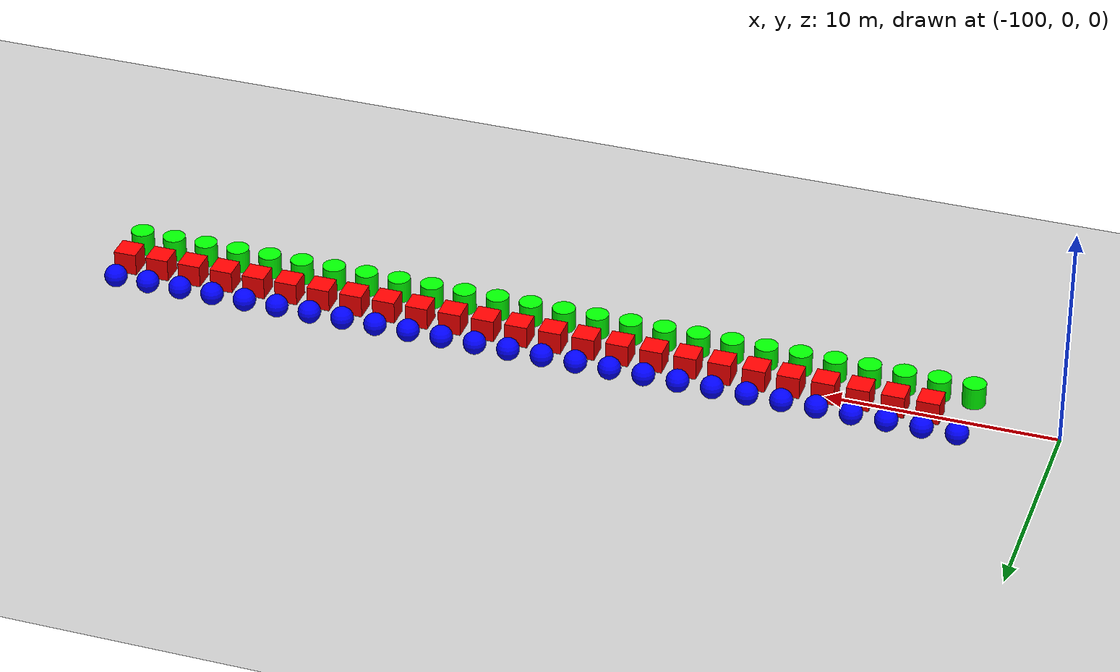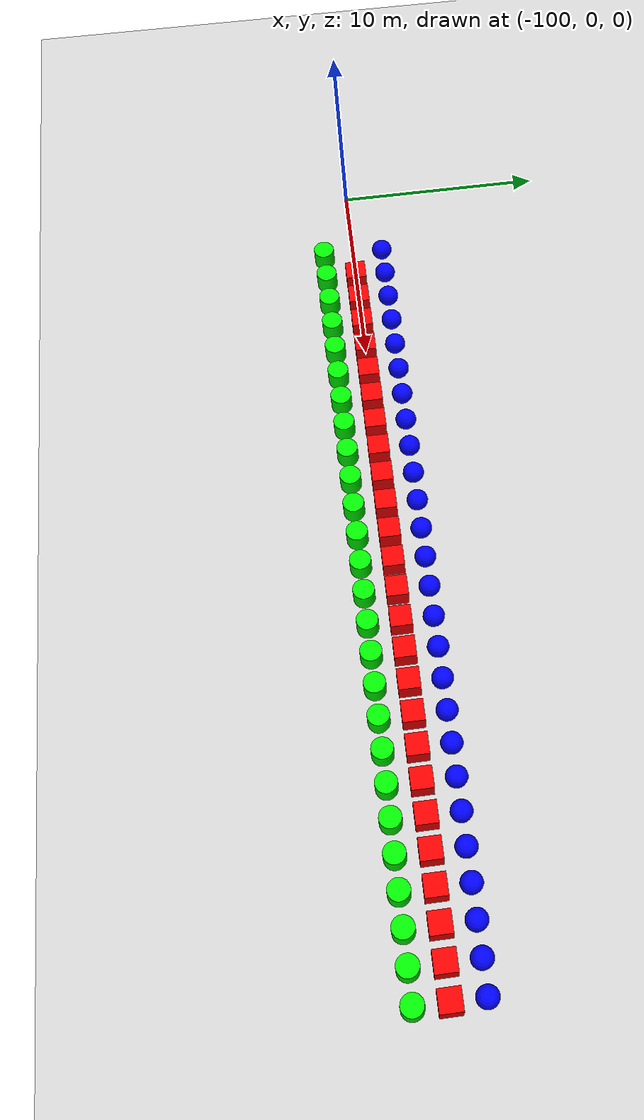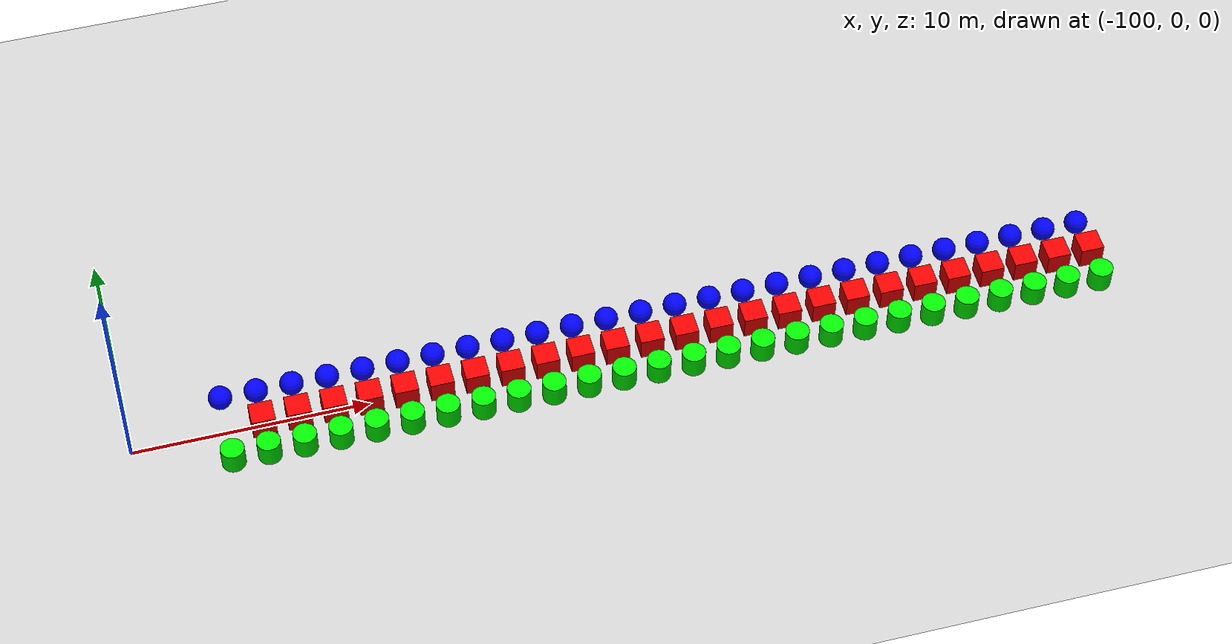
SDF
<sdf version="1.6">
 <world name="shapes">
  <model name="ground_plane">
   <static>true</static>
   <link name="link">
    <collision name="collision">
     <geometry><plane><normal>0 0 1</normal><size>100 100</size></plane></geometry>
    </collision>
    <visual name="visual">
     <geometry><plane><normal>0 0 1</normal><size>100 100</size></plane></geometry>
     <material>
      <ambient>0.8 0.8 0.8 1</ambient>
      <diffuse>0.8 0.8 0.8 1</diffuse>
      <specular>0.8 0.8 0.8 1</specular>
     </material>
    </visual>
   </link>
  </model>
  <model name="cylinder_436">
   <static>false</static>
   <pose>-96.0 -1.5 0.5 0 0 0</pose>
   <link name="cylinder_link">
    <inertial>
     <inertia><ixx>2</ixx><ixy>0</ixy><ixz>0</ixz><iyy>2</iyy><iyz>0</iyz><izz>2</izz></inertia>
     <mass>2.0</mass>
    </inertial>
    <collision name="cylinder_collision">
     <geometry><cylinder><radius>0.5</radius><length>1.0</length></cylinder></geometry>
    </collision>
    <visual name="cylinder_visual">
     <geometry><cylinder><radius>0.5</radius><length>1.0</length></cylinder></geometry>
     <material><ambient>0 1 0 1</ambient><diffuse>0 1 0 1</diffuse><specular>0 1 0 1</specular></material>
    </visual>
   </link>
  </model>
  <model name="sphere_436">
   <static>false</static>
   <pose>-96.0 1.5 0.5 0 0 0</pose>
   <link name="sphere_link">
    <inertial>
     <inertia><ixx>3</ixx><ixy>0</ixy><ixz>0</ixz><iyy>3</iyy><iyz>0</iyz><izz>3</izz></inertia>
     <mass>3.0</mass>
    </inertial>
    <collision name="sphere_collision"><geometry><sphere><radius>0.5</radius></sphere></geometry></collision>
    <visual name="sphere_visual">
     <geometry><sphere><radius>0.5</radius></sphere></geometry>
     <material><ambient>0 0 1 1</ambient><diffuse>0 0 1 1</diffuse><specular>0 0 1 1</specular></material>
    </visual>
   </link>
  </model>
  <model name="box_437">
   <static>false</static>
   <pose>-94.5 0 0.5 0 0 0</pose>
   <link name="box_link">
    <inertial>
     <inertia><ixx>1</ixx><ixy>0</ixy><ixz>0</ixz><iyy>1</iyy><iyz>0</iyz><izz>1</izz></inertia>
     <mass>1.0</mass>
    </inertial>
    <collision name="box_collision"><geometry><box><size>1 1 1</size></box></geometry></collision>
    <visual name="box_visual">
     <geometry><box><size>1 1 1</size></box></geometry>
     <material><ambient>1 0 0 1</ambient><diffuse>1 0 0 1</diffuse><specular>1 0 0 1</specular></material>
    </visual>
   </link>
  </model>
  <model name="cylinder_437">
   <static>false</static>
   <pose>-94.5 -1.5 0.5 0 0 0</pose>
   <link name="cylinder_link">
    <inertial>
     <inertia><ixx>2</ixx><ixy>0</ixy><ixz>0</ixz><iyy>2</iyy><iyz>0</iyz><izz>2</izz></inertia>
     <mass>2.0</mass>
    </inertial>
    <collision name="cylinder_collision">
     <geometry><cylinder><radius>0.5</radius><length>1.0</length></cylinder></geometry>
    </collision>
    <visual name="cylinder_visual">
     <geometry><cylinder><radius>0.5</radius><length>1.0</length></cylinder></geometry>
     <material><ambient>0 1 0 1</ambient><diffuse>0 1 0 1</diffuse><specular>0 1 0 1</specular></material>
    </visual>
   </link>
  </model>
  <model name="sphere_437">
   <static>false</static>
   <pose>-94.5 1.5 0.5 0 0 0</pose>
   <link name="sphere_link">
    <inertial>
     <inertia><ixx>3</ixx><ixy>0</ixy><ixz>0</ixz><iyy>3</iyy><iyz>0</iyz><izz>3</izz></inertia>
     <mass>3.0</mass>
    </inertial>
    <collision name="sphere_collision"><geometry><sphere><radius>0.5</radius></sphere></geometry></collision>
    <visual name="sphere_visual">
     <geometry><sphere><radius>0.5</radius></sphere></geometry>
     <material><ambient>0 0 1 1</ambient><diffuse>0 0 1 1</diffuse><specular>0 0 1 1</specular></material>
    </visual>
   </link>
  </model>
  <model name="box_438">
   <static>false</static>
   <pose>-93.0 0 0.5 0 0 0</pose>
   <link name="box_link">
    <inertial>
     <inertia><ixx>1</ixx><ixy>0</ixy><ixz>0</ixz><iyy>1</iyy><iyz>0</iyz><izz>1</izz></inertia>
     <mass>1.0</mass>
    </inertial>
    <collision name="box_collision"><geometry><box><size>1 1 1</size></box></geometry></collision>
    <visual name="box_visual">
     <geometry><box><size>1 1 1</size></box></geometry>
     <material><ambient>1 0 0 1</ambient><diffuse>1 0 0 1</diffuse><specular>1 0 0 1</specular></material>
    </visual>
   </link>
  </model>
  <model name="cylinder_438">
   <static>false</static>
   <pose>-93.0 -1.5 0.5 0 0 0</pose>
   <link name="cylinder_link">
    <inertial>
     <inertia><ixx>2</ixx><ixy>0</ixy><ixz>0</ixz><iyy>2</iyy><iyz>0</iyz><izz>2</izz></inertia>
     <mass>2.0</mass>
    </inertial>
    <collision name="cylinder_collision">
     <geometry><cylinder><radius>0.5</radius><length>1.0</length></cylinder></geometry>
    </collision>
    <visual name="cylinder_visual">
     <geometry><cylinder><radius>0.5</radius><length>1.0</length></cylinder></geometry>
     <material><ambient>0 1 0 1</ambient><diffuse>0 1 0 1</diffuse><specular>0 1 0 1</specular></material>
    </visual>
   </link>
  </model>
  <model name="sphere_438">
   <static>false</static>
   <pose>-93.0 1.5 0.5 0 0 0</pose>
   <link name="sphere_link">
    <inertial>
     <inertia><ixx>3</ixx><ixy>0</ixy><ixz>0</ixz><iyy>3</iyy><iyz>0</iyz><izz>3</izz></inertia>
     <mass>3.0</mass>
    </inertial>
    <collision name="sphere_collision"><geometry><sphere><radius>0.5</radius></sphere></geometry></collision>
    <visual name="sphere_visual">
     <geometry><sphere><radius>0.5</radius></sphere></geometry>
     <material><ambient>0 0 1 1</ambient><diffuse>0 0 1 1</diffuse><specular>0 0 1 1</specular></material>
    </visual>
   </link>
  </model>
  <model name="box_439">
   <static>false</static>
   <pose>-91.5 0 0.5 0 0 0</pose>
   <link name="box_link">
    <inertial>
     <inertia><ixx>1</ixx><ixy>0</ixy><ixz>0</ixz><iyy>1</iyy><iyz>0</iyz><izz>1</izz></inertia>
     <mass>1.0</mass>
    </inertial>
    <collision name="box_collision"><geometry><box><size>1 1 1</size></box></geometry></collision>
    <visual name="box_visual">
     <geometry><box><size>1 1 1</size></box></geometry>
     <material><ambient>1 0 0 1</ambient><diffuse>1 0 0 1</diffuse><specular>1 0 0 1</specular></material>
    </visual>
   </link>
  </model>
  <model name="cylinder_439">
   <static>false</static>
   <pose>-91.5 -1.5 0.5 0 0 0</pose>
   <link name="cylinder_link">
    <inertial>
     <inertia><ixx>2</ixx><ixy>0</ixy><ixz>0</ixz><iyy>2</iyy><iyz>0</iyz><izz>2</izz></inertia>
     <mass>2.0</mass>
    </inertial>
    <collision name="cylinder_collision">
     <geometry><cylinder><radius>0.5</radius><length>1.0</length></cylinder></geometry>
    </collision>
    <visual name="cylinder_visual">
     <geometry><cylinder><radius>0.5</radius><length>1.0</length></cylinder></geometry>
     <material><ambient>0 1 0 1</ambient><diffuse>0 1 0 1</diffuse><specular>0 1 0 1</specular></material>
    </visual>
   </link>
  </model>
  <model name="sphere_439">
   <static>false</static>
   <pose>-91.5 1.5 0.5 0 0 0</pose>
   <link name="sphere_link">
    <inertial>
     <inertia><ixx>3</ixx><ixy>0</ixy><ixz>0</ixz><iyy>3</iyy><iyz>0</iyz><izz>3</izz></inertia>
     <mass>3.0</mass>
    </inertial>
    <collision name="sphere_collision"><geometry><sphere><radius>0.5</radius></sphere></geometry></collision>
    <visual name="sphere_visual">
     <geometry><sphere><radius>0.5</radius></sphere></geometry>
     <material><ambient>0 0 1 1</ambient><diffuse>0 0 1 1</diffuse><specular>0 0 1 1</specular></material>
    </visual>
   </link>
  </model>
  <model name="box_440">
   <static>false</static>
   <pose>-90.0 0 0.5 0 0 0</pose>
   <link name="box_link">
    <inertial>
     <inertia><ixx>1</ixx><ixy>0</ixy><ixz>0</ixz><iyy>1</iyy><iyz>0</iyz><izz>1</izz></inertia>
     <mass>1.0</mass>
    </inertial>
    <collision name="box_collision"><geometry><box><size>1 1 1</size></box></geometry></collision>
    <visual name="box_visual">
     <geometry><box><size>1 1 1</size></box></geometry>
     <material><ambient>1 0 0 1</ambient><diffuse>1 0 0 1</diffuse><specular>1 0 0 1</specular></material>
    </visual>
   </link>
  </model>
  <model name="cylinder_440">
   <static>false</static>
   <pose>-90.0 -1.5 0.5 0 0 0</pose>
   <link name="cylinder_link">
    <inertial>
     <inertia><ixx>2</ixx><ixy>0</ixy><ixz>0</ixz><iyy>2</iyy><iyz>0</iyz><izz>2</izz></inertia>
     <mass>2.0</mass>
    </inertial>
    <collision name="cylinder_collision">
     <geometry><cylinder><radius>0.5</radius><length>1.0</length></cylinder></geometry>
    </collision>
    <visual name="cylinder_visual">
     <geometry><cylinder><radius>0.5</radius><length>1.0</length></cylinder></geometry>
     <material><ambient>0 1 0 1</ambient><diffuse>0 1 0 1</diffuse><specular>0 1 0 1</specular></material>
    </visual>
   </link>
  </model>
  <model name="sphere_440">
   <static>false</static>
   <pose>-90.0 1.5 0.5 0 0 0</pose>
   <link name="sphere_link">
    <inertial>
     <inertia><ixx>3</ixx><ixy>0</ixy><ixz>0</ixz><iyy>3</iyy><iyz>0</iyz><izz>3</izz></inertia>
     <mass>3.0</mass>
    </inertial>
    <collision name="sphere_collision"><geometry><sphere><radius>0.5</radius></sphere></geometry></collision>
    <visual name="sphere_visual">
     <geometry><sphere><radius>0.5</radius></sphere></geometry>
     <material><ambient>0 0 1 1</ambient><diffuse>0 0 1 1</diffuse><specular>0 0 1 1</specular></material>
    </visual>
   </link>
  </model>
  <model name="box_441">
   <static>false</static>
   <pose>-88.5 0 0.5 0 0 0</pose>
   <link name="box_link">
    <inertial>
     <inertia><ixx>1</ixx><ixy>0</ixy><ixz>0</ixz><iyy>1</iyy><iyz>0</iyz><izz>1</izz></inertia>
     <mass>1.0</mass>
    </inertial>
    <collision name="box_collision"><geometry><box><size>1 1 1</size></box></geometry></collision>
    <visual name="box_visual">
     <geometry><box><size>1 1 1</size></box></geometry>
     <material><ambient>1 0 0 1</ambient><diffuse>1 0 0 1</diffuse><specular>1 0 0 1</specular></material>
    </visual>
   </link>
  </model>
  <model name="cylinder_441">
   <static>false</static>
   <pose>-88.5 -1.5 0.5 0 0 0</pose>
   <link name="cylinder_link">
    <inertial>
     <inertia><ixx>2</ixx><ixy>0</ixy><ixz>0</ixz><iyy>2</iyy><iyz>0</iyz><izz>2</izz></inertia>
     <mass>2.0</mass>
    </inertial>
    <collision name="cylinder_collision">
     <geometry><cylinder><radius>0.5</radius><length>1.0</length></cylinder></geometry>
    </collision>
    <visual name="cylinder_visual">
     <geometry><cylinder><radius>0.5</radius><length>1.0</length></cylinder></geometry>
     <material><ambient>0 1 0 1</ambient><diffuse>0 1 0 1</diffuse><specular>0 1 0 1</specular></material>
    </visual>
   </link>
  </model>
  <model name="sphere_441">
   <static>false</static>
   <pose>-88.5 1.5 0.5 0 0 0</pose>
   <link name="sphere_link">
    <inertial>
     <inertia><ixx>3</ixx><ixy>0</ixy><ixz>0</ixz><iyy>3</iyy><iyz>0</iyz><izz>3</izz></inertia>
     <mass>3.0</mass>
    </inertial>
    <collision name="sphere_collision"><geometry><sphere><radius>0.5</radius></sphere></geometry></collision>
    <visual name="sphere_visual">
     <geometry><sphere><radius>0.5</radius></sphere></geometry>
     <material><ambient>0 0 1 1</ambient><diffuse>0 0 1 1</diffuse><specular>0 0 1 1</specular></material>
    </visual>
   </link>
  </model>
  <model name="box_442">
   <static>false</static>
   <pose>-87.0 0 0.5 0 0 0</pose>
   <link name="box_link">
    <inertial>
     <inertia><ixx>1</ixx><ixy>0</ixy><ixz>0</ixz><iyy>1</iyy><iyz>0</iyz><izz>1</izz></inertia>
     <mass>1.0</mass>
    </inertial>
    <collision name="box_collision"><geometry><box><size>1 1 1</size></box></geometry></collision>
    <visual name="box_visual">
     <geometry><box><size>1 1 1</size></box></geometry>
     <material><ambient>1 0 0 1</ambient><diffuse>1 0 0 1</diffuse><specular>1 0 0 1</specular></material>
    </visual>
   </link>
  </model>
  <model name="cylinder_442">
   <static>false</static>
   <pose>-87.0 -1.5 0.5 0 0 0</pose>
   <link name="cylinder_link">
    <inertial>
     <inertia><ixx>2</ixx><ixy>0</ixy><ixz>0</ixz><iyy>2</iyy><iyz>0</iyz><izz>2</izz></inertia>
     <mass>2.0</mass>
    </inertial>
    <collision name="cylinder_collision">
     <geometry><cylinder><radius>0.5</radius><length>1.0</length></cylinder></geometry>
    </collision>
    <visual name="cylinder_visual">
     <geometry><cylinder><radius>0.5</radius><length>1.0</length></cylinder></geometry>
     <material><ambient>0 1 0 1</ambient><diffuse>0 1 0 1</diffuse><specular>0 1 0 1</specular></material>
    </visual>
   </link>
  </model>
  <model name="sphere_442">
   <static>false</static>
   <pose>-87.0 1.5 0.5 0 0 0</pose>
   <link name="sphere_link">
    <inertial>
     <inertia><ixx>3</ixx><ixy>0</ixy><ixz>0</ixz><iyy>3</iyy><iyz>0</iyz><izz>3</izz></inertia>
     <mass>3.0</mass>
    </inertial>
    <collision name="sphere_collision"><geometry><sphere><radius>0.5</radius></sphere></geometry></collision>
    <visual name="sphere_visual">
     <geometry><sphere><radius>0.5</radius></sphere></geometry>
     <material><ambient>0 0 1 1</ambient><diffuse>0 0 1 1</diffuse><specular>0 0 1 1</specular></material>
    </visual>
   </link>
  </model>
  <model name="box_443">
   <static>false</static>
   <pose>-85.5 0 0.5 0 0 0</pose>
   <link name="box_link">
    <inertial>
     <inertia><ixx>1</ixx><ixy>0</ixy><ixz>0</ixz><iyy>1</iyy><iyz>0</iyz><izz>1</izz></inertia>
     <mass>1.0</mass>
    </inertial>
    <collision name="box_collision"><geometry><box><size>1 1 1</size></box></geometry></collision>
    <visual name="box_visual">
     <geometry><box><size>1 1 1</size></box></geometry>
     <material><ambient>1 0 0 1</ambient><diffuse>1 0 0 1</diffuse><specular>1 0 0 1</specular></material>
    </visual>
   </link>
  </model>
  <model name="cylinder_443">
   <static>false</static>
   <pose>-85.5 -1.5 0.5 0 0 0</pose>
   <link name="cylinder_link">
    <inertial>
     <inertia><ixx>2</ixx><ixy>0</ixy><ixz>0</ixz><iyy>2</iyy><iyz>0</iyz><izz>2</izz></inertia>
     <mass>2.0</mass>
    </inertial>
    <collision name="cylinder_collision">
     <geometry><cylinder><radius>0.5</radius><length>1.0</length></cylinder></geometry>
    </collision>
    <visual name="cylinder_visual">
     <geometry><cylinder><radius>0.5</radius><length>1.0</length></cylinder></geometry>
     <material><ambient>0 1 0 1</ambient><diffuse>0 1 0 1</diffuse><specular>0 1 0 1</specular></material>
    </visual>
   </link>
  </model>
  <model name="sphere_443">
   <static>false</static>
   <pose>-85.5 1.5 0.5 0 0 0</pose>
   <link name="sphere_link">
    <inertial>
     <inertia><ixx>3</ixx><ixy>0</ixy><ixz>0</ixz><iyy>3</iyy><iyz>0</iyz><izz>3</izz></inertia>
     <mass>3.0</mass>
    </inertial>
    <collision name="sphere_collision"><geometry><sphere><radius>0.5</radius></sphere></geometry></collision>
    <visual name="sphere_visual">
     <geometry><sphere><radius>0.5</radius></sphere></geometry>
     <material><ambient>0 0 1 1</ambient><diffuse>0 0 1 1</diffuse><specular>0 0 1 1</specular></material>
    </visual>
   </link>
  </model>
  <model name="box_444">
   <static>false</static>
   <pose>-84.0 0 0.5 0 0 0</pose>
   <link name="box_link">
    <inertial>
     <inertia><ixx>1</ixx><ixy>0</ixy><ixz>0</ixz><iyy>1</iyy><iyz>0</iyz><izz>1</izz></inertia>
     <mass>1.0</mass>
    </inertial>
    <collision name="box_collision"><geometry><box><size>1 1 1</size></box></geometry></collision>
    <visual name="box_visual">
     <geometry><box><size>1 1 1</size></box></geometry>
     <material><ambient>1 0 0 1</ambient><diffuse>1 0 0 1</diffuse><specular>1 0 0 1</specular></material>
    </visual>
   </link>
  </model>
  <model name="cylinder_444">
   <static>false</static>
   <pose>-84.0 -1.5 0.5 0 0 0</pose>
   <link name="cylinder_link">
    <inertial>
     <inertia><ixx>2</ixx><ixy>0</ixy><ixz>0</ixz><iyy>2</iyy><iyz>0</iyz><izz>2</izz></inertia>
     <mass>2.0</mass>
    </inertial>
    <collision name="cylinder_collision">
     <geometry><cylinder><radius>0.5</radius><length>1.0</length></cylinder></geometry>
    </collision>
    <visual name="cylinder_visual">
     <geometry><cylinder><radius>0.5</radius><length>1.0</length></cylinder></geometry>
     <material><ambient>0 1 0 1</ambient><diffuse>0 1 0 1</diffuse><specular>0 1 0 1</specular></material>
    </visual>
   </link>
  </model>
  <model name="sphere_444">
   <static>false</static>
   <pose>-84.0 1.5 0.5 0 0 0</pose>
   <link name="sphere_link">
    <inertial>
     <inertia><ixx>3</ixx><ixy>0</ixy><ixz>0</ixz><iyy>3</iyy><iyz>0</iyz><izz>3</izz></inertia>
     <mass>3.0</mass>
    </inertial>
    <collision name="sphere_collision"><geometry><sphere><radius>0.5</radius></sphere></geometry></collision>
    <visual name="sphere_visual">
     <geometry><sphere><radius>0.5</radius></sphere></geometry>
     <material><ambient>0 0 1 1</ambient><diffuse>0 0 1 1</diffuse><specular>0 0 1 1</specular></material>
    </visual>
   </link>
  </model>
  <model name="box_445">
   <static>false</static>
   <pose>-82.5 0 0.5 0 0 0</pose>
   <link name="box_link">
    <inertial>
     <inertia><ixx>1</ixx><ixy>0</ixy><ixz>0</ixz><iyy>1</iyy><iyz>0</iyz><izz>1</izz></inertia>
     <mass>1.0</mass>
    </inertial>
    <collision name="box_collision"><geometry><box><size>1 1 1</size></box></geometry></collision>
    <visual name="box_visual">
     <geometry><box><size>1 1 1</size></box></geometry>
     <material><ambient>1 0 0 1</ambient><diffuse>1 0 0 1</diffuse><specular>1 0 0 1</specular></material>
    </visual>
   </link>
  </model>
  <model name="cylinder_445">
   <static>false</static>
   <pose>-82.5 -1.5 0.5 0 0 0</pose>
   <link name="cylinder_link">
    <inertial>
     <inertia><ixx>2</ixx><ixy>0</ixy><ixz>0</ixz><iyy>2</iyy><iyz>0</iyz><izz>2</izz></inertia>
     <mass>2.0</mass>
    </inertial>
    <collision name="cylinder_collision">
     <geometry><cylinder><radius>0.5</radius><length>1.0</length></cylinder></geometry>
    </collision>
    <visual name="cylinder_visual">
     <geometry><cylinder><radius>0.5</radius><length>1.0</length></cylinder></geometry>
     <material><ambient>0 1 0 1</ambient><diffuse>0 1 0 1</diffuse><specular>0 1 0 1</specular></material>
    </visual>
   </link>
  </model>
  <model name="sphere_445">
   <static>false</static>
   <pose>-82.5 1.5 0.5 0 0 0</pose>
   <link name="sphere_link">
    <inertial>
     <inertia><ixx>3</ixx><ixy>0</ixy><ixz>0</ixz><iyy>3</iyy><iyz>0</iyz><izz>3</izz></inertia>
     <mass>3.0</mass>
    </inertial>
    <collision name="sphere_collision"><geometry><sphere><radius>0.5</radius></sphere></geometry></collision>
    <visual name="sphere_visual">
     <geometry><sphere><radius>0.5</radius></sphere></geometry>
     <material><ambient>0 0 1 1</ambient><diffuse>0 0 1 1</diffuse><specular>0 0 1 1</specular></material>
    </visual>
   </link>
  </model>
  <model name="box_446">
   <static>false</static>
   <pose>-81.0 0 0.5 0 0 0</pose>
   <link name="box_link">
    <inertial>
     <inertia><ixx>1</ixx><ixy>0</ixy><ixz>0</ixz><iyy>1</iyy><iyz>0</iyz><izz>1</izz></inertia>
     <mass>1.0</mass>
    </inertial>
    <collision name="box_collision"><geometry><box><size>1 1 1</size></box></geometry></collision>
    <visual name="box_visual">
     <geometry><box><size>1 1 1</size></box></geometry>
     <material><ambient>1 0 0 1</ambient><diffuse>1 0 0 1</diffuse><specular>1 0 0 1</specular></material>
    </visual>
   </link>
  </model>
  <model name="cylinder_446">
   <static>false</static>
   <pose>-81.0 -1.5 0.5 0 0 0</pose>
   <link name="cylinder_link">
    <inertial>
     <inertia><ixx>2</ixx><ixy>0</ixy><ixz>0</ixz><iyy>2</iyy><iyz>0</iyz><izz>2</izz></inertia>
     <mass>2.0</mass>
    </inertial>
    <collision name="cylinder_collision">
     <geometry><cylinder><radius>0.5</radius><length>1.0</length></cylinder></geometry>
    </collision>
    <visual name="cylinder_visual">
     <geometry><cylinder><radius>0.5</radius><length>1.0</length></cylinder></geometry>
     <material><ambient>0 1 0 1</ambient><diffuse>0 1 0 1</diffuse><specular>0 1 0 1</specular></material>
    </visual>
   </link>
  </model>
  <model name="sphere_446">
   <static>false</static>
   <pose>-81.0 1.5 0.5 0 0 0</pose>
   <link name="sphere_link">
    <inertial>
     <inertia><ixx>3</ixx><ixy>0</ixy><ixz>0</ixz><iyy>3</iyy><iyz>0</iyz><izz>3</izz></inertia>
     <mass>3.0</mass>
    </inertial>
    <collision name="sphere_collision"><geometry><sphere><radius>0.5</radius></sphere></geometry></collision>
    <visual name="sphere_visual">
     <geometry><sphere><radius>0.5</radius></sphere></geometry>
     <material><ambient>0 0 1 1</ambient><diffuse>0 0 1 1</diffuse><specular>0 0 1 1</specular></material>
    </visual>
   </link>
  </model>
  <model name="box_447">
   <static>false</static>
   <pose>-79.5 0 0.5 0 0 0</pose>
   <link name="box_link">
    <inertial>
     <inertia><ixx>1</ixx><ixy>0</ixy><ixz>0</ixz><iyy>1</iyy><iyz>0</iyz><izz>1</izz></inertia>
     <mass>1.0</mass>
    </inertial>
    <collision name="box_collision"><geometry><box><size>1 1 1</size></box></geometry></collision>
    <visual name="box_visual">
     <geometry><box><size>1 1 1</size></box></geometry>
     <material><ambient>1 0 0 1</ambient><diffuse>1 0 0 1</diffuse><specular>1 0 0 1</specular></material>
    </visual>
   </link>
  </model>
  <model name="cylinder_447">
   <static>false</static>
   <pose>-79.5 -1.5 0.5 0 0 0</pose>
   <link name="cylinder_link">
    <inertial>
     <inertia><ixx>2</ixx><ixy>0</ixy><ixz>0</ixz><iyy>2</iyy><iyz>0</iyz><izz>2</izz></inertia>
     <mass>2.0</mass>
    </inertial>
    <collision name="cylinder_collision">
     <geometry><cylinder><radius>0.5</radius><length>1.0</length></cylinder></geometry>
    </collision>
    <visual name="cylinder_visual">
     <geometry><cylinder><radius>0.5</radius><length>1.0</length></cylinder></geometry>
     <material><ambient>0 1 0 1</ambient><diffuse>0 1 0 1</diffuse><specular>0 1 0 1</specular></material>
    </visual>
   </link>
  </model>
  <model name="sphere_447">
   <static>false</static>
   <pose>-79.5 1.5 0.5 0 0 0</pose>
   <link name="sphere_link">
    <inertial>
     <inertia><ixx>3</ixx><ixy>0</ixy><ixz>0</ixz><iyy>3</iyy><iyz>0</iyz><izz>3</izz></inertia>
     <mass>3.0</mass>
    </inertial>
    <collision name="sphere_collision"><geometry><sphere><radius>0.5</radius></sphere></geometry></collision>
    <visual name="sphere_visual">
     <geometry><sphere><radius>0.5</radius></sphere></geometry>
     <material><ambient>0 0 1 1</ambient><diffuse>0 0 1 1</diffuse><specular>0 0 1 1</specular></material>
    </visual>
   </link>
  </model>
  <model name="box_448">
   <static>false</static>
   <pose>-78.0 0 0.5 0 0 0</pose>
   <link name="box_link">
    <inertial>
     <inertia><ixx>1</ixx><ixy>0</ixy><ixz>0</ixz><iyy>1</iyy><iyz>0</iyz><izz>1</izz></inertia>
     <mass>1.0</mass>
    </inertial>
    <collision name="box_collision"><geometry><box><size>1 1 1</size></box></geometry></collision>
    <visual name="box_visual">
     <geometry><box><size>1 1 1</size></box></geometry>
     <material><ambient>1 0 0 1</ambient><diffuse>1 0 0 1</diffuse><specular>1 0 0 1</specular></material>
    </visual>
   </link>
  </model>
  <model name="cylinder_448">
   <static>false</static>
   <pose>-78.0 -1.5 0.5 0 0 0</pose>
   <link name="cylinder_link">
    <inertial>
     <inertia><ixx>2</ixx><ixy>0</ixy><ixz>0</ixz><iyy>2</iyy><iyz>0</iyz><izz>2</izz></inertia>
     <mass>2.0</mass>
    </inertial>
    <collision name="cylinder_collision">
     <geometry><cylinder><radius>0.5</radius><length>1.0</length></cylinder></geometry>
    </collision>
    <visual name="cylinder_visual">
     <geometry><cylinder><radius>0.5</radius><length>1.0</length></cylinder></geometry>
     <material><ambient>0 1 0 1</ambient><diffuse>0 1 0 1</diffuse><specular>0 1 0 1</specular></material>
    </visual>
   </link>
  </model>
  <model name="sphere_448">
   <static>false</static>
   <pose>-78.0 1.5 0.5 0 0 0</pose>
   <link name="sphere_link">
    <inertial>
     <inertia><ixx>3</ixx><ixy>0</ixy><ixz>0</ixz><iyy>3</iyy><iyz>0</iyz><izz>3</izz></inertia>
     <mass>3.0</mass>
    </inertial>
    <collision name="sphere_collision"><geometry><sphere><radius>0.5</radius></sphere></geometry></collision>
    <visual name="sphere_visual">
     <geometry><sphere><radius>0.5</radius></sphere></geometry>
     <material><ambient>0 0 1 1</ambient><diffuse>0 0 1 1</diffuse><specular>0 0 1 1</specular></material>
    </visual>
   </link>
  </model>
  <model name="box_449">
   <static>false</static>
   <pose>-76.5 0 0.5 0 0 0</pose>
   <link name="box_link">
    <inertial>
     <inertia><ixx>1</ixx><ixy>0</ixy><ixz>0</ixz><iyy>1</iyy><iyz>0</iyz><izz>1</izz></inertia>
     <mass>1.0</mass>
    </inertial>
    <collision name="box_collision"><geometry><box><size>1 1 1</size></box></geometry></collision>
    <visual name="box_visual">
     <geometry><box><size>1 1 1</size></box></geometry>
     <material><ambient>1 0 0 1</ambient><diffuse>1 0 0 1</diffuse><specular>1 0 0 1</specular></material>
    </visual>
   </link>
  </model>
  <model name="cylinder_449">
   <static>false</static>
   <pose>-76.5 -1.5 0.5 0 0 0</pose>
   <link name="cylinder_link">
    <inertial>
     <inertia><ixx>2</ixx><ixy>0</ixy><ixz>0</ixz><iyy>2</iyy><iyz>0</iyz><izz>2</izz></inertia>
     <mass>2.0</mass>
    </inertial>
    <collision name="cylinder_collision">
     <geometry><cylinder><radius>0.5</radius><length>1.0</length></cylinder></geometry>
    </collision>
    <visual name="cylinder_visual">
     <geometry><cylinder><radius>0.5</radius><length>1.0</length></cylinder></geometry>
     <material><ambient>0 1 0 1</ambient><diffuse>0 1 0 1</diffuse><specular>0 1 0 1</specular></material>
    </visual>
   </link>
  </model>
  <model name="sphere_449">
   <static>false</static>
   <pose>-76.5 1.5 0.5 0 0 0</pose>
   <link name="sphere_link">
    <inertial>
     <inertia><ixx>3</ixx><ixy>0</ixy><ixz>0</ixz><iyy>3</iyy><iyz>0</iyz><izz>3</izz></inertia>
     <mass>3.0</mass>
    </inertial>
    <collision name="sphere_collision"><geometry><sphere><radius>0.5</radius></sphere></geometry></collision>
    <visual name="sphere_visual">
     <geometry><sphere><radius>0.5</radius></sphere></geometry>
     <material><ambient>0 0 1 1</ambient><diffuse>0 0 1 1</diffuse><specular>0 0 1 1</specular></material>
    </visual>
   </link>
  </model>
  <model name="box_450">
   <static>false</static>
   <pose>-75.0 0 0.5 0 0 0</pose>
   <link name="box_link">
    <inertial>
     <inertia><ixx>1</ixx><ixy>0</ixy><ixz>0</ixz><iyy>1</iyy><iyz>0</iyz><izz>1</izz></inertia>
     <mass>1.0</mass>
    </inertial>
    <collision name="box_collision"><geometry><box><size>1 1 1</size></box></geometry></collision>
    <visual name="box_visual">
     <geometry><box><size>1 1 1</size></box></geometry>
     <material><ambient>1 0 0 1</ambient><diffuse>1 0 0 1</diffuse><specular>1 0 0 1</specular></material>
    </visual>
   </link>
  </model>
  <model name="cylinder_450">
   <static>false</static>
   <pose>-75.0 -1.5 0.5 0 0 0</pose>
   <link name="cylinder_link">
    <inertial>
     <inertia><ixx>2</ixx><ixy>0</ixy><ixz>0</ixz><iyy>2</iyy><iyz>0</iyz><izz>2</izz></inertia>
     <mass>2.0</mass>
    </inertial>
    <collision name="cylinder_collision">
     <geometry><cylinder><radius>0.5</radius><length>1.0</length></cylinder></geometry>
    </collision>
    <visual name="cylinder_visual">
     <geometry><cylinder><radius>0.5</radius><length>1.0</length></cylinder></geometry>
     <material><ambient>0 1 0 1</ambient><diffuse>0 1 0 1</diffuse><specular>0 1 0 1</specular></material>
    </visual>
   </link>
  </model>
  <model name="sphere_450">
   <static>false</static>
   <pose>-75.0 1.5 0.5 0 0 0</pose>
   <link name="sphere_link">
    <inertial>
     <inertia><ixx>3</ixx><ixy>0</ixy><ixz>0</ixz><iyy>3</iyy><iyz>0</iyz><izz>3</izz></inertia>
     <mass>3.0</mass>
    </inertial>
    <collision name="sphere_collision"><geometry><sphere><radius>0.5</radius></sphere></geometry></collision>
    <visual name="sphere_visual">
     <geometry><sphere><radius>0.5</radius></sphere></geometry>
     <material><ambient>0 0 1 1</ambient><diffuse>0 0 1 1</diffuse><specular>0 0 1 1</specular></material>
    </visual>
   </link>
  </model>
  <model name="box_451">
   <static>false</static>
   <pose>-73.5 0 0.5 0 0 0</pose>
   <link name="box_link">
    <inertial>
     <inertia><ixx>1</ixx><ixy>0</ixy><ixz>0</ixz><iyy>1</iyy><iyz>0</iyz><izz>1</izz></inertia>
     <mass>1.0</mass>
    </inertial>
    <collision name="box_collision"><geometry><box><size>1 1 1</size></box></geometry></collision>
    <visual name="box_visual">
     <geometry><box><size>1 1 1</size></box></geometry>
     <material><ambient>1 0 0 1</ambient><diffuse>1 0 0 1</diffuse><specular>1 0 0 1</specular></material>
    </visual>
   </link>
  </model>
  <model name="cylinder_451">
   <static>false</static>
   <pose>-73.5 -1.5 0.5 0 0 0</pose>
   <link name="cylinder_link">
    <inertial>
     <inertia><ixx>2</ixx><ixy>0</ixy><ixz>0</ixz><iyy>2</iyy><iyz>0</iyz><izz>2</izz></inertia>
     <mass>2.0</mass>
    </inertial>
    <collision name="cylinder_collision">
     <geometry><cylinder><radius>0.5</radius><length>1.0</length></cylinder></geometry>
    </collision>
    <visual name="cylinder_visual">
     <geometry><cylinder><radius>0.5</radius><length>1.0</length></cylinder></geometry>
     <material><ambient>0 1 0 1</ambient><diffuse>0 1 0 1</diffuse><specular>0 1 0 1</specular></material>
    </visual>
   </link>
  </model>
  <model name="sphere_451">
   <static>false</static>
   <pose>-73.5 1.5 0.5 0 0 0</pose>
   <link name="sphere_link">
    <inertial>
     <inertia><ixx>3</ixx><ixy>0</ixy><ixz>0</ixz><iyy>3</iyy><iyz>0</iyz><izz>3</izz></inertia>
     <mass>3.0</mass>
    </inertial>
    <collision name="sphere_collision"><geometry><sphere><radius>0.5</radius></sphere></geometry></collision>
    <visual name="sphere_visual">
     <geometry><sphere><radius>0.5</radius></sphere></geometry>
     <material><ambient>0 0 1 1</ambient><diffuse>0 0 1 1</diffuse><specular>0 0 1 1</specular></material>
    </visual>
   </link>
  </model>
  <model name="box_452">
   <static>false</static>
   <pose>-72.0 0 0.5 0 0 0</pose>
   <link name="box_link">
    <inertial>
     <inertia><ixx>1</ixx><ixy>0</ixy><ixz>0</ixz><iyy>1</iyy><iyz>0</iyz><izz>1</izz></inertia>
     <mass>1.0</mass>
    </inertial>
    <collision name="box_collision"><geometry><box><size>1 1 1</size></box></geometry></collision>
    <visual name="box_visual">
     <geometry><box><size>1 1 1</size></box></geometry>
     <material><ambient>1 0 0 1</ambient><diffuse>1 0 0 1</diffuse><specular>1 0 0 1</specular></material>
    </visual>
   </link>
  </model>
  <model name="cylinder_452">
   <static>false</static>
   <pose>-72.0 -1.5 0.5 0 0 0</pose>
   <link name="cylinder_link">
    <inertial>
     <inertia><ixx>2</ixx><ixy>0</ixy><ixz>0</ixz><iyy>2</iyy><iyz>0</iyz><izz>2</izz></inertia>
     <mass>2.0</mass>
    </inertial>
    <collision name="cylinder_collision">
     <geometry><cylinder><radius>0.5</radius><length>1.0</length></cylinder></geometry>
    </collision>
    <visual name="cylinder_visual">
     <geometry><cylinder><radius>0.5</radius><length>1.0</length></cylinder></geometry>
     <material><ambient>0 1 0 1</ambient><diffuse>0 1 0 1</diffuse><specular>0 1 0 1</specular></material>
    </visual>
   </link>
  </model>
  <model name="sphere_452">
   <static>false</static>
   <pose>-72.0 1.5 0.5 0 0 0</pose>
   <link name="sphere_link">
    <inertial>
     <inertia><ixx>3</ixx><ixy>0</ixy><ixz>0</ixz><iyy>3</iyy><iyz>0</iyz><izz>3</izz></inertia>
     <mass>3.0</mass>
    </inertial>
    <collision name="sphere_collision"><geometry><sphere><radius>0.5</radius></sphere></geometry></collision>
    <visual name="sphere_visual">
     <geometry><sphere><radius>0.5</radius></sphere></geometry>
     <material><ambient>0 0 1 1</ambient><diffuse>0 0 1 1</diffuse><specular>0 0 1 1</specular></material>
    </visual>
   </link>
  </model>
  <model name="box_453">
   <static>false</static>
   <pose>-70.5 0 0.5 0 0 0</pose>
   <link name="box_link">
    <inertial>
     <inertia><ixx>1</ixx><ixy>0</ixy><ixz>0</ixz><iyy>1</iyy><iyz>0</iyz><izz>1</izz></inertia>
     <mass>1.0</mass>
    </inertial>
    <collision name="box_collision"><geometry><box><size>1 1 1</size></box></geometry></collision>
    <visual name="box_visual">
     <geometry><box><size>1 1 1</size></box></geometry>
     <material><ambient>1 0 0 1</ambient><diffuse>1 0 0 1</diffuse><specular>1 0 0 1</specular></material>
    </visual>
   </link>
  </model>
  <model name="cylinder_453">
   <static>false</static>
   <pose>-70.5 -1.5 0.5 0 0 0</pose>
   <link name="cylinder_link">
    <inertial>
     <inertia><ixx>2</ixx><ixy>0</ixy><ixz>0</ixz><iyy>2</iyy><iyz>0</iyz><izz>2</izz></inertia>
     <mass>2.0</mass>
    </inertial>
    <collision name="cylinder_collision">
     <geometry><cylinder><radius>0.5</radius><length>1.0</length></cylinder></geometry>
    </collision>
    <visual name="cylinder_visual">
     <geometry><cylinder><radius>0.5</radius><length>1.0</length></cylinder></geometry>
     <material><ambient>0 1 0 1</ambient><diffuse>0 1 0 1</diffuse><specular>0 1 0 1</specular></material>
    </visual>
   </link>
  </model>
  <model name="sphere_453">
   <static>false</static>
   <pose>-70.5 1.5 0.5 0 0 0</pose>
   <link name="sphere_link">
    <inertial>
     <inertia><ixx>3</ixx><ixy>0</ixy><ixz>0</ixz><iyy>3</iyy><iyz>0</iyz><izz>3</izz></inertia>
     <mass>3.0</mass>
    </inertial>
    <collision name="sphere_collision"><geometry><sphere><radius>0.5</radius></sphere></geometry></collision>
    <visual name="sphere_visual">
     <geometry><sphere><radius>0.5</radius></sphere></geometry>
     <material><ambient>0 0 1 1</ambient><diffuse>0 0 1 1</diffuse><specular>0 0 1 1</specular></material>
    </visual>
   </link>
  </model>
  <model name="box_454">
   <static>false</static>
   <pose>-69.0 0 0.5 0 0 0</pose>
   <link name="box_link">
    <inertial>
     <inertia><ixx>1</ixx><ixy>0</ixy><ixz>0</ixz><iyy>1</iyy><iyz>0</iyz><izz>1</izz></inertia>
     <mass>1.0</mass>
    </inertial>
    <collision name="box_collision"><geometry><box><size>1 1 1</size></box></geometry></collision>
    <visual name="box_visual">
     <geometry><box><size>1 1 1</size></box></geometry>
     <material><ambient>1 0 0 1</ambient><diffuse>1 0 0 1</diffuse><specular>1 0 0 1</specular></material>
    </visual>
   </link>
  </model>
  <model name="cylinder_454">
   <static>false</static>
   <pose>-69.0 -1.5 0.5 0 0 0</pose>
   <link name="cylinder_link">
    <inertial>
     <inertia><ixx>2</ixx><ixy>0</ixy><ixz>0</ixz><iyy>2</iyy><iyz>0</iyz><izz>2</izz></inertia>
     <mass>2.0</mass>
    </inertial>
    <collision name="cylinder_collision">
     <geometry><cylinder><radius>0.5</radius><length>1.0</length></cylinder></geometry>
    </collision>
    <visual name="cylinder_visual">
     <geometry><cylinder><radius>0.5</radius><length>1.0</length></cylinder></geometry>
     <material><ambient>0 1 0 1</ambient><diffuse>0 1 0 1</diffuse><specular>0 1 0 1</specular></material>
    </visual>
   </link>
  </model>
  <model name="sphere_454">
   <static>false</static>
   <pose>-69.0 1.5 0.5 0 0 0</pose>
   <link name="sphere_link">
    <inertial>
     <inertia><ixx>3</ixx><ixy>0</ixy><ixz>0</ixz><iyy>3</iyy><iyz>0</iyz><izz>3</izz></inertia>
     <mass>3.0</mass>
    </inertial>
    <collision name="sphere_collision"><geometry><sphere><radius>0.5</radius></sphere></geometry></collision>
    <visual name="sphere_visual">
     <geometry><sphere><radius>0.5</radius></sphere></geometry>
     <material><ambient>0 0 1 1</ambient><diffuse>0 0 1 1</diffuse><specular>0 0 1 1</specular></material>
    </visual>
   </link>
  </model>
  <model name="box_455">
   <static>false</static>
   <pose>-67.5 0 0.5 0 0 0</pose>
   <link name="box_link">
    <inertial>
     <inertia><ixx>1</ixx><ixy>0</ixy><ixz>0</ixz><iyy>1</iyy><iyz>0</iyz><izz>1</izz></inertia>
     <mass>1.0</mass>
    </inertial>
    <collision name="box_collision"><geometry><box><size>1 1 1</size></box></geometry></collision>
    <visual name="box_visual">
     <geometry><box><size>1 1 1</size></box></geometry>
     <material><ambient>1 0 0 1</ambient><diffuse>1 0 0 1</diffuse><specular>1 0 0 1</specular></material>
    </visual>
   </link>
  </model>
  <model name="cylinder_455">
   <static>false</static>
   <pose>-67.5 -1.5 0.5 0 0 0</pose>
   <link name="cylinder_link">
    <inertial>
     <inertia><ixx>2</ixx><ixy>0</ixy><ixz>0</ixz><iyy>2</iyy><iyz>0</iyz><izz>2</izz></inertia>
     <mass>2.0</mass>
    </inertial>
    <collision name="cylinder_collision">
     <geometry><cylinder><radius>0.5</radius><length>1.0</length></cylinder></geometry>
    </collision>
    <visual name="cylinder_visual">
     <geometry><cylinder><radius>0.5</radius><length>1.0</length></cylinder></geometry>
     <material><ambient>0 1 0 1</ambient><diffuse>0 1 0 1</diffuse><specular>0 1 0 1</specular></material>
    </visual>
   </link>
  </model>
  <model name="sphere_455">
   <static>false</static>
   <pose>-67.5 1.5 0.5 0 0 0</pose>
   <link name="sphere_link">
    <inertial>
     <inertia><ixx>3</ixx><ixy>0</ixy><ixz>0</ixz><iyy>3</iyy><iyz>0</iyz><izz>3</izz></inertia>
     <mass>3.0</mass>
    </inertial>
    <collision name="sphere_collision"><geometry><sphere><radius>0.5</radius></sphere></geometry></collision>
    <visual name="sphere_visual">
     <geometry><sphere><radius>0.5</radius></sphere></geometry>
     <material><ambient>0 0 1 1</ambient><diffuse>0 0 1 1</diffuse><specular>0 0 1 1</specular></material>
    </visual>
   </link>
  </model>
  <model name="box_456">
   <static>false</static>
   <pose>-66.0 0 0.5 0 0 0</pose>
   <link name="box_link">
    <inertial>
     <inertia><ixx>1</ixx><ixy>0</ixy><ixz>0</ixz><iyy>1</iyy><iyz>0</iyz><izz>1</izz></inertia>
     <mass>1.0</mass>
    </inertial>
    <collision name="box_collision"><geometry><box><size>1 1 1</size></box></geometry></collision>
    <visual name="box_visual">
     <geometry><box><size>1 1 1</size></box></geometry>
     <material><ambient>1 0 0 1</ambient><diffuse>1 0 0 1</diffuse><specular>1 0 0 1</specular></material>
    </visual>
   </link>
  </model>
  <model name="cylinder_456">
   <static>false</static>
   <pose>-66.0 -1.5 0.5 0 0 0</pose>
   <link name="cylinder_link">
    <inertial>
     <inertia><ixx>2</ixx><ixy>0</ixy><ixz>0</ixz><iyy>2</iyy><iyz>0</iyz><izz>2</izz></inertia>
     <mass>2.0</mass>
    </inertial>
    <collision name="cylinder_collision">
     <geometry><cylinder><radius>0.5</radius><length>1.0</length></cylinder></geometry>
    </collision>
    <visual name="cylinder_visual">
     <geometry><cylinder><radius>0.5</radius><length>1.0</length></cylinder></geometry>
     <material><ambient>0 1 0 1</ambient><diffuse>0 1 0 1</diffuse><specular>0 1 0 1</specular></material>
    </visual>
   </link>
  </model>
  <model name="sphere_456">
   <static>false</static>
   <pose>-66.0 1.5 0.5 0 0 0</pose>
   <link name="sphere_link">
    <inertial>
     <inertia><ixx>3</ixx><ixy>0</ixy><ixz>0</ixz><iyy>3</iyy><iyz>0</iyz><izz>3</izz></inertia>
     <mass>3.0</mass>
    </inertial>
    <collision name="sphere_collision"><geometry><sphere><radius>0.5</radius></sphere></geometry></collision>
    <visual name="sphere_visual">
     <geometry><sphere><radius>0.5</radius></sphere></geometry>
     <material><ambient>0 0 1 1</ambient><diffuse>0 0 1 1</diffuse><specular>0 0 1 1</specular></material>
    </visual>
   </link>
  </model>
  <model name="box_457">
   <static>false</static>
   <pose>-64.5 0 0.5 0 0 0</pose>
   <link name="box_link">
    <inertial>
     <inertia><ixx>1</ixx><ixy>0</ixy><ixz>0</ixz><iyy>1</iyy><iyz>0</iyz><izz>1</izz></inertia>
     <mass>1.0</mass>
    </inertial>
    <collision name="box_collision"><geometry><box><size>1 1 1</size></box></geometry></collision>
    <visual name="box_visual">
     <geometry><box><size>1 1 1</size></box></geometry>
     <material><ambient>1 0 0 1</ambient><diffuse>1 0 0 1</diffuse><specular>1 0 0 1</specular></material>
    </visual>
   </link>
  </model>
  <model name="cylinder_457">
   <static>false</static>
   <pose>-64.5 -1.5 0.5 0 0 0</pose>
   <link name="cylinder_link">
    <inertial>
     <inertia><ixx>2</ixx><ixy>0</ixy><ixz>0</ixz><iyy>2</iyy><iyz>0</iyz><izz>2</izz></inertia>
     <mass>2.0</mass>
    </inertial>
    <collision name="cylinder_collision">
     <geometry><cylinder><radius>0.5</radius><length>1.0</length></cylinder></geometry>
    </collision>
    <visual name="cylinder_visual">
     <geometry><cylinder><radius>0.5</radius><length>1.0</length></cylinder></geometry>
     <material><ambient>0 1 0 1</ambient><diffuse>0 1 0 1</diffuse><specular>0 1 0 1</specular></material>
    </visual>
   </link>
  </model>
  <model name="sphere_457">
   <static>false</static>
   <pose>-64.5 1.5 0.5 0 0 0</pose>
   <link name="sphere_link">
    <inertial>
     <inertia><ixx>3</ixx><ixy>0</ixy><ixz>0</ixz><iyy>3</iyy><iyz>0</iyz><izz>3</izz></inertia>
     <mass>3.0</mass>
    </inertial>
    <collision name="sphere_collision"><geometry><sphere><radius>0.5</radius></sphere></geometry></collision>
    <visual name="sphere_visual">
     <geometry><sphere><radius>0.5</radius></sphere></geometry>
     <material><ambient>0 0 1 1</ambient><diffuse>0 0 1 1</diffuse><specular>0 0 1 1</specular></material>
    </visual>
   </link>
  </model>
  <model name="box_458">
   <static>false</static>
   <pose>-63.0 0 0.5 0 0 0</pose>
   <link name="box_link">
    <inertial>
     <inertia><ixx>1</ixx><ixy>0</ixy><ixz>0</ixz><iyy>1</iyy><iyz>0</iyz><izz>1</izz></inertia>
     <mass>1.0</mass>
    </inertial>
    <collision name="box_collision"><geometry><box><size>1 1 1</size></box></geometry></collision>
    <visual name="box_visual">
     <geometry><box><size>1 1 1</size></box></geometry>
     <material><ambient>1 0 0 1</ambient><diffuse>1 0 0 1</diffuse><specular>1 0 0 1</specular></material>
    </visual>
   </link>
  </model>
  <model name="cylinder_458">
   <static>false</static>
   <pose>-63.0 -1.5 0.5 0 0 0</pose>
   <link name="cylinder_link">
    <inertial>
     <inertia><ixx>2</ixx><ixy>0</ixy><ixz>0</ixz><iyy>2</iyy><iyz>0</iyz><izz>2</izz></inertia>
     <mass>2.0</mass>
    </inertial>
    <collision name="cylinder_collision">
     <geometry><cylinder><radius>0.5</radius><length>1.0</length></cylinder></geometry>
    </collision>
    <visual name="cylinder_visual">
     <geometry><cylinder><radius>0.5</radius><length>1.0</length></cylinder></geometry>
     <material><ambient>0 1 0 1</ambient><diffuse>0 1 0 1</diffuse><specular>0 1 0 1</specular></material>
    </visual>
   </link>
  </model>
  <model name="sphere_458">
   <static>false</static>
   <pose>-63.0 1.5 0.5 0 0 0</pose>
   <link name="sphere_link">
    <inertial>
     <inertia><ixx>3</ixx><ixy>0</ixy><ixz>0</ixz><iyy>3</iyy><iyz>0</iyz><izz>3</izz></inertia>
     <mass>3.0</mass>
    </inertial>
    <collision name="sphere_collision"><geometry><sphere><radius>0.5</radius></sphere></geometry></collision>
    <visual name="sphere_visual">
     <geometry><sphere><radius>0.5</radius></sphere></geometry>
     <material><ambient>0 0 1 1</ambient><diffuse>0 0 1 1</diffuse><specular>0 0 1 1</specular></material>
    </visual>
   </link>
  </model>
  <model name="box_459">
   <static>false</static>
   <pose>-61.5 0 0.5 0 0 0</pose>
   <link name="box_link">
    <inertial>
     <inertia><ixx>1</ixx><ixy>0</ixy><ixz>0</ixz><iyy>1</iyy><iyz>0</iyz><izz>1</izz></inertia>
     <mass>1.0</mass>
    </inertial>
    <collision name="box_collision"><geometry><box><size>1 1 1</size></box></geometry></collision>
    <visual name="box_visual">
     <geometry><box><size>1 1 1</size></box></geometry>
     <material><ambient>1 0 0 1</ambient><diffuse>1 0 0 1</diffuse><specular>1 0 0 1</specular></material>
    </visual>
   </link>
  </model>
  <model name="cylinder_459">
   <static>false</static>
   <pose>-61.5 -1.5 0.5 0 0 0</pose>
   <link name="cylinder_link">
    <inertial>
     <inertia><ixx>2</ixx><ixy>0</ixy><ixz>0</ixz><iyy>2</iyy><iyz>0</iyz><izz>2</izz></inertia>
     <mass>2.0</mass>
    </inertial>
    <collision name="cylinder_collision">
     <geometry><cylinder><radius>0.5</radius><length>1.0</length></cylinder></geometry>
    </collision>
    <visual name="cylinder_visual">
     <geometry><cylinder><radius>0.5</radius><length>1.0</length></cylinder></geometry>
     <material><ambient>0 1 0 1</ambient><diffuse>0 1 0 1</diffuse><specular>0 1 0 1</specular></material>
    </visual>
   </link>
  </model>
  <model name="sphere_459">
   <static>false</static>
   <pose>-61.5 1.5 0.5 0 0 0</pose>
   <link name="sphere_link">
    <inertial>
     <inertia><ixx>3</ixx><ixy>0</ixy><ixz>0</ixz><iyy>3</iyy><iyz>0</iyz><izz>3</izz></inertia>
     <mass>3.0</mass>
    </inertial>
    <collision name="sphere_collision"><geometry><sphere><radius>0.5</radius></sphere></geometry></collision>
    <visual name="sphere_visual">
     <geometry><sphere><radius>0.5</radius></sphere></geometry>
     <material><ambient>0 0 1 1</ambient><diffuse>0 0 1 1</diffuse><specular>0 0 1 1</specular></material>
    </visual>
   </link>
  </model>
  <model name="box_460">
   <static>false</static>
   <pose>-60.0 0 0.5 0 0 0</pose>
   <link name="box_link">
    <inertial>
     <inertia><ixx>1</ixx><ixy>0</ixy><ixz>0</ixz><iyy>1</iyy><iyz>0</iyz><izz>1</izz></inertia>
     <mass>1.0</mass>
    </inertial>
    <collision name="box_collision"><geometry><box><size>1 1 1</size></box></geometry></collision>
    <visual name="box_visual">
     <geometry><box><size>1 1 1</size></box></geometry>
     <material><ambient>1 0 0 1</ambient><diffuse>1 0 0 1</diffuse><specular>1 0 0 1</specular></material>
    </visual>
   </link>
  </model>
  <model name="cylinder_460">
   <static>false</static>
   <pose>-60.0 -1.5 0.5 0 0 0</pose>
   <link name="cylinder_link">
    <inertial>
     <inertia><ixx>2</ixx><ixy>0</ixy><ixz>0</ixz><iyy>2</iyy><iyz>0</iyz><izz>2</izz></inertia>
     <mass>2.0</mass>
    </inertial>
    <collision name="cylinder_collision">
     <geometry><cylinder><radius>0.5</radius><length>1.0</length></cylinder></geometry>
    </collision>
    <visual name="cylinder_visual">
     <geometry><cylinder><radius>0.5</radius><length>1.0</length></cylinder></geometry>
     <material><ambient>0 1 0 1</ambient><diffuse>0 1 0 1</diffuse><specular>0 1 0 1</specular></material>
    </visual>
   </link>
  </model>
  <model name="sphere_460">
   <static>false</static>
   <pose>-60.0 1.5 0.5 0 0 0</pose>
   <link name="sphere_link">
    <inertial>
     <inertia><ixx>3</ixx><ixy>0</ixy><ixz>0</ixz><iyy>3</iyy><iyz>0</iyz><izz>3</izz></inertia>
     <mass>3.0</mass>
    </inertial>
    <collision name="sphere_collision"><geometry><sphere><radius>0.5</radius></sphere></geometry></collision>
    <visual name="sphere_visual">
     <geometry><sphere><radius>0.5</radius></sphere></geometry>
     <material><ambient>0 0 1 1</ambient><diffuse>0 0 1 1</diffuse><specular>0 0 1 1</specular></material>
    </visual>
   </link>
  </model>
  <model name="box_461">
   <static>false</static>
   <pose>-58.5 0 0.5 0 0 0</pose>
   <link name="box_link">
    <inertial>
     <inertia><ixx>1</ixx><ixy>0</ixy><ixz>0</ixz><iyy>1</iyy><iyz>0</iyz><izz>1</izz></inertia>
     <mass>1.0</mass>
    </inertial>
    <collision name="box_collision"><geometry><box><size>1 1 1</size></box></geometry></collision>
    <visual name="box_visual">
     <geometry><box><size>1 1 1</size></box></geometry>
     <material><ambient>1 0 0 1</ambient><diffuse>1 0 0 1</diffuse><specular>1 0 0 1</specular></material>
    </visual>
   </link>
  </model>
  <model name="cylinder_461">
   <static>false</static>
   <pose>-58.5 -1.5 0.5 0 0 0</pose>
   <link name="cylinder_link">
    <inertial>
     <inertia><ixx>2</ixx><ixy>0</ixy><ixz>0</ixz><iyy>2</iyy><iyz>0</iyz><izz>2</izz></inertia>
     <mass>2.0</mass>
    </inertial>
    <collision name="cylinder_collision">
     <geometry><cylinder><radius>0.5</radius><length>1.0</length></cylinder></geometry>
    </collision>
    <visual name="cylinder_visual">
     <geometry><cylinder><radius>0.5</radius><length>1.0</length></cylinder></geometry>
     <material><ambient>0 1 0 1</ambient><diffuse>0 1 0 1</diffuse><specular>0 1 0 1</specular></material>
    </visual>
   </link>
  </model>
  <model name="sphere_461">
   <static>false</static>
   <pose>-58.5 1.5 0.5 0 0 0</pose>
   <link name="sphere_link">
    <inertial>
     <inertia><ixx>3</ixx><ixy>0</ixy><ixz>0</ixz><iyy>3</iyy><iyz>0</iyz><izz>3</izz></inertia>
     <mass>3.0</mass>
    </inertial>
    <collision name="sphere_collision"><geometry><sphere><radius>0.5</radius></sphere></geometry></collision>
    <visual name="sphere_visual">
     <geometry><sphere><radius>0.5</radius></sphere></geometry>
     <material><ambient>0 0 1 1</ambient><diffuse>0 0 1 1</diffuse><specular>0 0 1 1</specular></material>
    </visual>
   </link>
  </model>
 </world>
</sdf>
